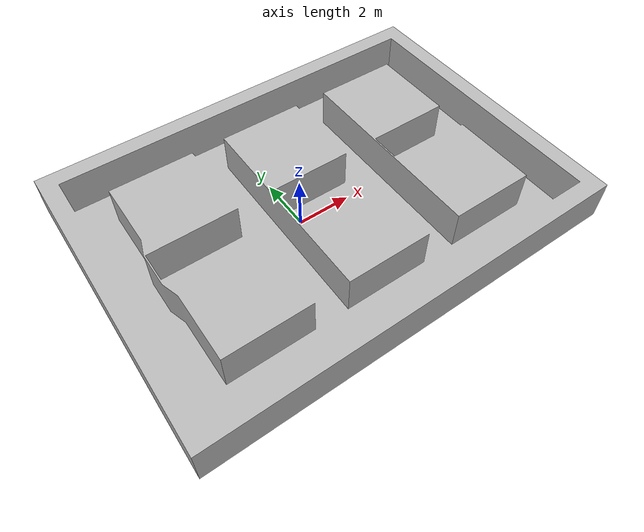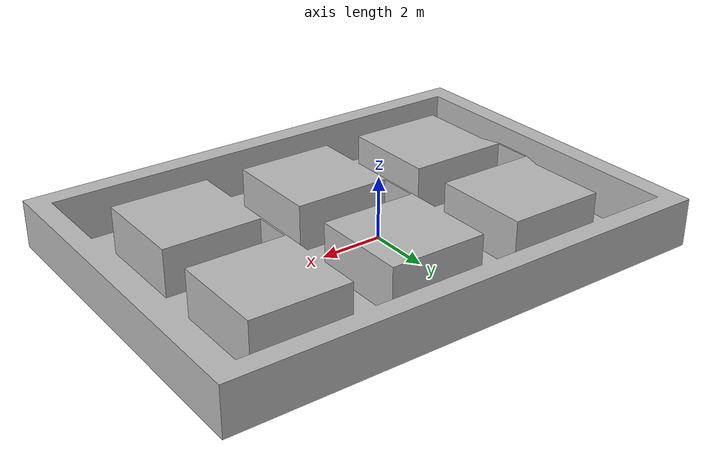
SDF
<?xml version="1.0"?>
<sdf version="1.4">
  <world name="default">
    <include>
      <uri>model://sun</uri>
    </include>

    <include>
      <uri>model://turtlebot3_maze/maze_test8</uri>
    </include>

    <physics type="ode">
      <real_time_update_rate>1000.0</real_time_update_rate>
      <max_step_size>0.001</max_step_size>
      <real_time_factor>1</real_time_factor>
      <ode>
        <solver>
          <type>quick</type>
          <iters>150</iters>
          <precon_iters>0</precon_iters>
          <sor>1.400000</sor>
          <use_dynamic_moi_rescaling>1</use_dynamic_moi_rescaling>
        </solver>
        <constraints>
          <cfm>0.00001</cfm>
          <erp>0.2</erp>
          <contact_max_correcting_vel>2000.000000</contact_max_correcting_vel>
          <contact_surface_layer>0.01000</contact_surface_layer>
        </constraints>
      </ode>
    </physics>

  </world>
</sdf>

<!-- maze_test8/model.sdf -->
<sdf version='1.6'>
  <model name='maze_test8'>
    <link name='link_0'>
      <pose frame=''>0 0 0 0 -0 0</pose>
      <inertial>
        <mass>1</mass>
        <inertia>
          <ixx>0.166667</ixx>
          <ixy>0</ixy>
          <ixz>0</ixz>
          <iyy>0.166667</iyy>
          <iyz>0</iyz>
          <izz>0.166667</izz>
        </inertia>
      </inertial>
      <visual name='visual'>
        <pose frame=''>0 0 0 0 -0 0</pose>
        <geometry>
          <mesh>
            <uri>model://turtlebot3_maze/maze_test8/maze_test8.dae</uri>
            <scale>1 1 1</scale>
          </mesh>
        </geometry>
        <cast_shadows>1</cast_shadows>
        <transparency>0</transparency>
      </visual>
      <collision name='collision'>
        <laser_retro>0</laser_retro>
        <max_contacts>10</max_contacts>
        <pose frame=''>0 0 0 0 -0 0</pose>
        <geometry>
          <mesh>
            <uri>model://turtlebot3_maze/maze_test8/maze_test8.stl</uri>
          </mesh>
        </geometry>
        <surface>
          <friction>
            <ode>
              <mu>1</mu>
              <mu2>1</mu2>
              <fdir1>0 0 0</fdir1>
              <slip1>0</slip1>
              <slip2>0</slip2>
            </ode>
            <torsional>
              <coefficient>1</coefficient>
              <patch_radius>0</patch_radius>
              <surface_radius>0</surface_radius>
              <use_patch_radius>1</use_patch_radius>
              <ode>
                <slip>0</slip>
              </ode>
            </torsional>
          </friction>
          <bounce>
            <restitution_coefficient>0</restitution_coefficient>
            <threshold>1e+06</threshold>
          </bounce>
          <contact>
            <collide_without_contact>0</collide_without_contact>
            <collide_without_contact_bitmask>1</collide_without_contact_bitmask>
            <collide_bitmask>1</collide_bitmask>
            <ode>
              <soft_cfm>0</soft_cfm>
              <soft_erp>0.2</soft_erp>
              <kp>1e+13</kp>
              <kd>1</kd>
              <max_vel>0.01</max_vel>
              <min_depth>0</min_depth>
            </ode>
            <bullet>
              <split_impulse>1</split_impulse>
              <split_impulse_penetration_threshold>-0.01</split_impulse_penetration_threshold>
              <soft_cfm>0</soft_cfm>
              <soft_erp>0.2</soft_erp>
              <kp>1e+13</kp>
              <kd>1</kd>
            </bullet>
          </contact>
        </surface>
      </collision>
    </link>
    <static>1</static>
    <allow_auto_disable>1</allow_auto_disable>
  </model>
</sdf>
